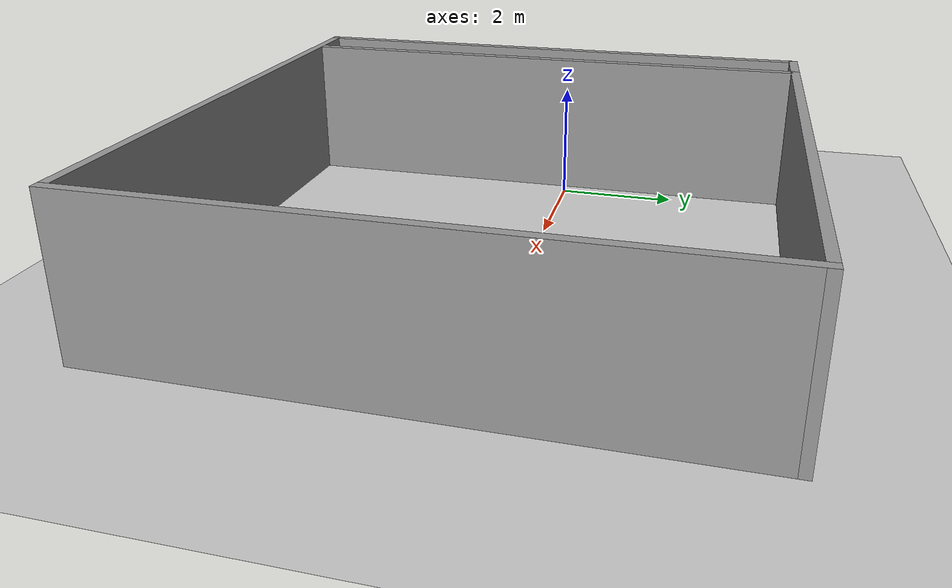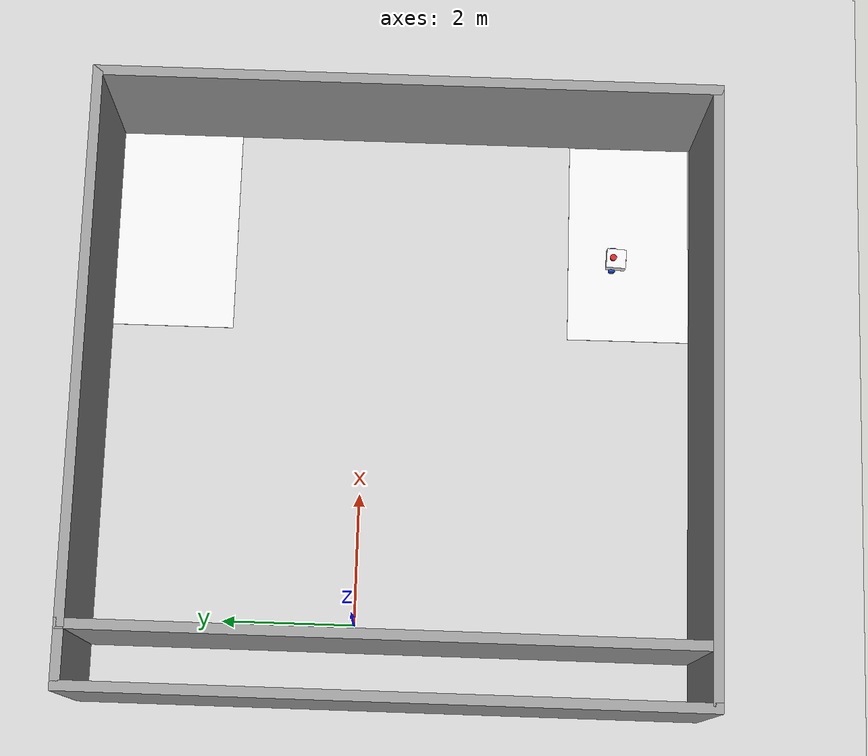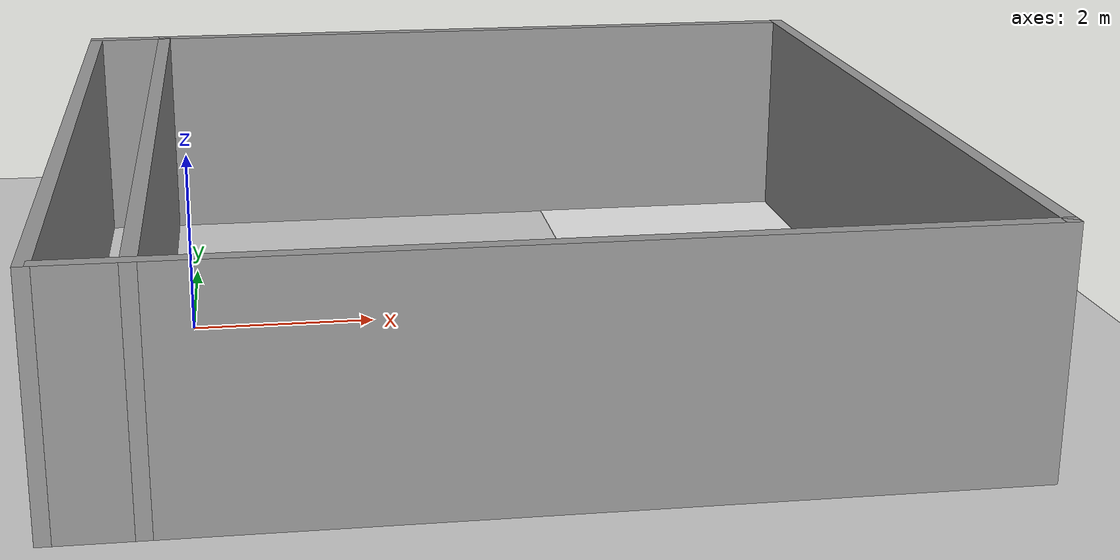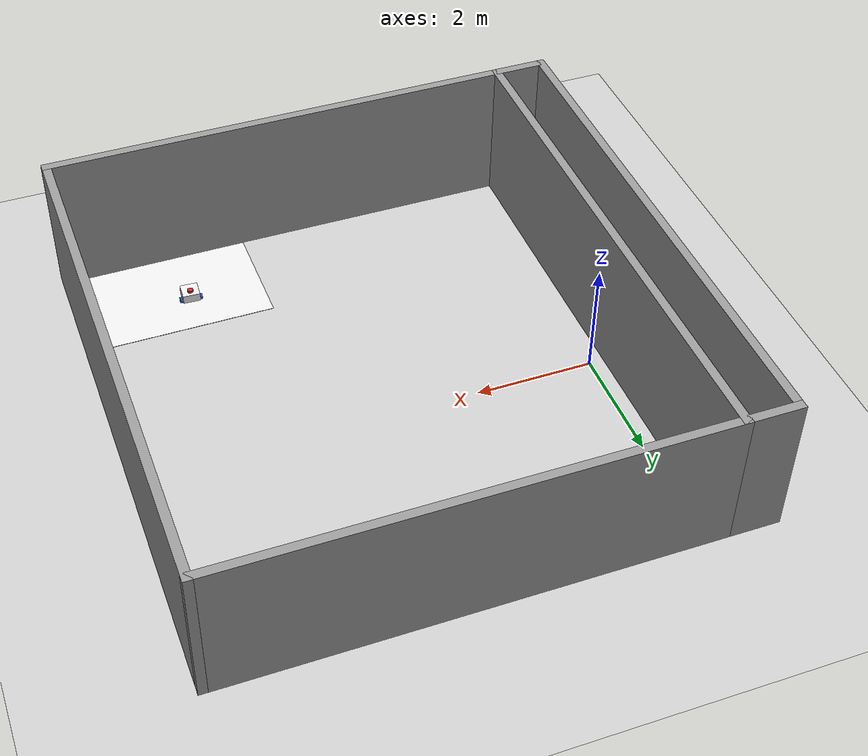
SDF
<sdf version="1.7">
 <world name="default">
  <light name="sun" type="directional">
   <pose>0 0 10 0 -0 0</pose>
   <diffuse>0.8 0.8 0.8 1</diffuse>
   <specular>0.2 0.2 0.2 1</specular>
   <attenuation>
    <range>1000</range>
    <constant>0.9</constant>
    <linear>0.01</linear>
    <quadratic>0.001</quadratic>
   </attenuation>
   <direction>-0.5 0.1 -0.9</direction>
   <spot><inner_angle>0</inner_angle><outer_angle>0</outer_angle><falloff>0</falloff></spot>
  </light>
  <model name="ground_plane">
   <static>1</static>
   <link name="link">
    <collision name="collision">
     <geometry><plane><normal>0 0 1</normal><size>100 100</size></plane></geometry>
     <surface>
      <contact><collide_bitmask>65535</collide_bitmask></contact>
      <friction><ode><mu>100</mu><mu2>50</mu2></ode></friction>
     </surface>
    </collision>
    <visual name="visual">
     <cast_shadows>0</cast_shadows>
     <geometry><plane><normal>0 0 1</normal><size>100 100</size></plane></geometry>
     <material>
      <script><uri>file://media/materials/scripts/gazebo.material</uri><name>Gazebo/Grey</name></script>
     </material>
    </visual>
   </link>
  </model>
  <gravity>0 0 -9.8</gravity>
  <magnetic_field>6e-06 2.3e-05 -4.2e-05</magnetic_field>
  <atmosphere type="adiabatic"/>
  <physics type="ode">
   <max_step_size>0.001</max_step_size>
   <real_time_factor>1</real_time_factor>
   <real_time_update_rate>1000</real_time_update_rate>
  </physics>
  <scene><ambient>0.4 0.4 0.4 1</ambient><background>0.7 0.7 0.7 1</background><shadows>1</shadows></scene>
  <audio><device>default</device></audio>
  <spherical_coordinates>
   <surface_model>EARTH_WGS84</surface_model>
   <latitude_deg>0</latitude_deg>
   <longitude_deg>0</longitude_deg>
   <elevation>0</elevation>
   <heading_deg>0</heading_deg>
  </spherical_coordinates>
  <model name="my_bot">
   <link name="base_link">
    <inertial>
     <pose>0.055714 0 0.078571 0 -0 0</pose>
     <mass>0.7</mass>
     <inertia>
      <ixx>0.0064169</ixx>
      <ixy>0</ixy>
      <ixz>0.00118929</ixz>
      <iyy>0.00745405</iyy>
      <iyz>0</iyz>
      <izz>0.00876214</izz>
     </inertia>
    </inertial>
    <collision name="base_link_fixed_joint_lump__chassis_collision">
     <pose>0.05 0 0.075 0 -0 0</pose>
     <geometry><box><size>0.3 0.3 0.15</size></box></geometry>
    </collision>
    <collision name="base_link_fixed_joint_lump__caster_wheel_collision_1">
     <pose>0.14 0 0 0 -0 0</pose>
     <geometry><sphere><radius>0.05</radius></sphere></geometry>
     <surface><friction><ode><mu>0.001</mu><mu2>0.001</mu2></ode></friction></surface>
    </collision>
    <collision name="base_link_fixed_joint_lump__laser_frame_collision_2">
     <pose>0 0 0.175 0 -0 0</pose>
     <geometry><cylinder><length>0.04</length><radius>0.05</radius></cylinder></geometry>
    </collision>
    <visual name="base_link_fixed_joint_lump__chassis_visual">
     <pose>0.05 0 0.075 0 -0 0</pose>
     <geometry><box><size>0.3 0.3 0.15</size></box></geometry>
     <material>
      <script><name>Gazebo/White</name><uri>file://media/materials/scripts/gazebo.material</uri></script>
     </material>
    </visual>
    <visual name="base_link_fixed_joint_lump__camera_link_visual_1">
     <pose>0.205 0 0.08 0 -0 0</pose>
     <geometry><box><size>0.01 0.03 0.03</size></box></geometry>
     <material>
      <script><name>Gazebo/Red</name><uri>file://media/materials/scripts/gazebo.material</uri></script>
     </material>
    </visual>
    <visual name="base_link_fixed_joint_lump__caster_wheel_visual_2">
     <pose>0.14 0 0 0 -0 0</pose>
     <geometry><sphere><radius>0.05</radius></sphere></geometry>
     <material>
      <script><name>Gazebo/Black</name><uri>file://media/materials/scripts/gazebo.material</uri></script>
     </material>
    </visual>
    <visual name="base_link_fixed_joint_lump__laser_frame_visual_3">
     <pose>0 0 0.175 0 -0 0</pose>
     <geometry><cylinder><length>0.04</length><radius>0.05</radius></cylinder></geometry>
     <material>
      <script><name>Gazebo/Red</name><uri>file://media/materials/scripts/gazebo.material</uri></script>
     </material>
    </visual>
    <sensor name="camera" type="camera">
     <visualize>1</visualize>
     <update_rate>10</update_rate>
     <camera>
      <horizontal_fov>1.089</horizontal_fov>
      <image><format>R8G8B8</format><width>640</width><height>480</height></image>
      <clip><near>0.05</near><far>8</far></clip>
     </camera>
     <plugin name="camera_controller" filename="libgazebo_ros_camera.so">
      <frame_name>camera_link_optical</frame_name>
     </plugin>
     <pose>0.205 0 0.08 0 -0 0</pose>
    </sensor>
    <sensor name="laser" type="ray">
     <visualize>0</visualize>
     <update_rate>10</update_rate>
     <ray>
      <scan>
       <horizontal>
        <samples>360</samples>
        <min_angle>-3.14</min_angle>
        <max_angle>3.14</max_angle>
        <resolution>1</resolution>
       </horizontal>
       <vertical><samples>1</samples><min_angle>0</min_angle><max_angle>0</max_angle></vertical>
      </scan>
      <range><min>0.3</min><max>12</max></range>
     </ray>
     <plugin name="laser_controller" filename="libgazebo_ros_ray_sensor.so">
      <ros><argument>~/out:=scan</argument></ros>
      <output_type>sensor_msgs/LaserScan</output_type>
      <frame_name>laser_frame</frame_name>
     </plugin>
     <pose>0 0 0.175 0 -0 0</pose>
    </sensor>
   </link>
   <joint name="left_wheel_joint" type="revolute">
    <pose relative_to="base_link">0 0.175 0 -1.5708 0 0</pose>
    <parent>base_link</parent>
    <child>left_wheel</child>
    <axis>
     <xyz>0 0 1</xyz>
     <limit><lower>-1e+16</lower><upper>1e+16</upper></limit>
     <dynamics><spring_reference>0</spring_reference><spring_stiffness>0</spring_stiffness></dynamics>
    </axis>
   </joint>
   <link name="left_wheel">
    <pose relative_to="left_wheel_joint">0 0 0 0 -0 0</pose>
    <inertial>
     <mass>0.1</mass>
     <inertia>
      <ixx>7.58333e-05</ixx>
      <ixy>0</ixy>
      <ixz>0</ixz>
      <iyy>7.58333e-05</iyy>
      <iyz>0</iyz>
      <izz>0.000125</izz>
     </inertia>
    </inertial>
    <collision name="left_wheel_collision">
     <geometry><cylinder><length>0.04</length><radius>0.05</radius></cylinder></geometry>
    </collision>
    <visual name="left_wheel_visual">
     <geometry><cylinder><length>0.04</length><radius>0.05</radius></cylinder></geometry>
     <material>
      <script><name>Gazebo/Blue</name><uri>file://media/materials/scripts/gazebo.material</uri></script>
     </material>
    </visual>
   </link>
   <joint name="right_wheel_joint" type="revolute">
    <pose relative_to="base_link">0 -0.175 0 1.5708 -0 0</pose>
    <parent>base_link</parent>
    <child>right_wheel</child>
    <axis>
     <xyz>0 0 -1</xyz>
     <limit><lower>-1e+16</lower><upper>1e+16</upper></limit>
     <dynamics><spring_reference>0</spring_reference><spring_stiffness>0</spring_stiffness></dynamics>
    </axis>
   </joint>
   <link name="right_wheel">
    <pose relative_to="right_wheel_joint">0 0 0 0 -0 0</pose>
    <inertial>
     <mass>0.1</mass>
     <inertia>
      <ixx>7.58333e-05</ixx>
      <ixy>0</ixy>
      <ixz>0</ixz>
      <iyy>7.58333e-05</iyy>
      <iyz>0</iyz>
      <izz>0.000125</izz>
     </inertia>
    </inertial>
    <collision name="right_wheel_collision">
     <geometry><cylinder><length>0.04</length><radius>0.05</radius></cylinder></geometry>
    </collision>
    <visual name="right_wheel_visual">
     <geometry><cylinder><length>0.04</length><radius>0.05</radius></cylinder></geometry>
     <material>
      <script><name>Gazebo/Blue</name><uri>file://media/materials/scripts/gazebo.material</uri></script>
     </material>
    </visual>
   </link>
   <static>0</static>
   <plugin name="diff_drive" filename="libgazebo_ros_diff_drive.so">
    <left_joint>left_wheel_joint</left_joint>
    <right_joint>right_wheel_joint</right_joint>
    <wheel_separation>0.35</wheel_separation>
    <wheel_diameter>0.1</wheel_diameter>
    <max_wheel_torque>200</max_wheel_torque>
    <max_wheel_acceleration>10.0</max_wheel_acceleration>
    <odometry_frame>odom</odometry_frame>
    <robot_base_frame>base_link</robot_base_frame>
    <publish_odom>1</publish_odom>
    <publish_odom_tf>1</publish_odom_tf>
    <publish_wheel_tf>1</publish_wheel_tf>
   </plugin>
   <pose>5.83232 -3.80543 0.056942 -1e-06 6e-06 -1.62681</pose>
  </model>
  <model name="Lunabotics_wall">
   <pose>5.73379 -0.007944 0 0 -0 0</pose>
   <link name="Wall_12">
    <collision name="Wall_12_Collision">
     <geometry><box><size>9.25 0.15 2.5</size></box></geometry>
     <pose>0 0 1.25 0 -0 0</pose>
    </collision>
    <visual name="Wall_12_Visual">
     <pose>0 0 1.25 0 -0 0</pose>
     <geometry><box><size>9.25 0.15 2.5</size></box></geometry>
     <material>
      <script><uri>file://media/materials/scripts/gazebo.material</uri><name>Gazebo/Grey</name></script>
      <ambient>1 1 1 1</ambient>
     </material>
     <meta><layer>0</layer></meta>
    </visual>
    <pose>2.03067 -0.523451 0 0 -0 1.5708</pose>
   </link>
   <link name="Wall_13">
    <collision name="Wall_13_Collision">
     <geometry><box><size>8.25 0.15 2.5</size></box></geometry>
     <pose>0 0 1.25 0 -0 0</pose>
    </collision>
    <visual name="Wall_13_Visual">
     <pose>0 0 1.25 0 -0 0</pose>
     <geometry><box><size>8.25 0.15 2.5</size></box></geometry>
     <material>
      <script><uri>file://media/materials/scripts/gazebo.material</uri><name>Gazebo/Grey</name></script>
      <ambient>1 1 1 1</ambient>
     </material>
     <meta><layer>0</layer></meta>
    </visual>
    <pose>-2.01933 4.02655 0 0 -0 3.14159</pose>
   </link>
   <link name="Wall_2">
    <collision name="Wall_2_Collision">
     <geometry><box><size>9.25 0.15 2.5</size></box></geometry>
     <pose>0 0 1.25 0 -0 0</pose>
    </collision>
    <visual name="Wall_2_Visual">
     <pose>0 0 1.25 0 -0 0</pose>
     <geometry><box><size>9.25 0.15 2.5</size></box></geometry>
     <material>
      <script><uri>file://media/materials/scripts/gazebo.material</uri><name>Gazebo/Grey</name></script>
      <ambient>1 1 1 1</ambient>
     </material>
     <meta><layer>0</layer></meta>
    </visual>
    <pose>-6.91933 -0.523451 0 0 -0 1.5708</pose>
   </link>
   <link name="Wall_3">
    <collision name="Wall_3_Collision">
     <geometry><box><size>1 0.15 2.5</size></box></geometry>
     <pose>0 0 1.25 0 -0 0</pose>
    </collision>
    <visual name="Wall_3_Visual">
     <pose>0 0 1.25 0 -0 0</pose>
     <geometry><box><size>1 0.15 2.5</size></box></geometry>
     <material>
      <script><uri>file://media/materials/scripts/gazebo.material</uri><name>Gazebo/Grey</name></script>
      <ambient>1 1 1 1</ambient>
     </material>
     <meta><layer>0</layer></meta>
    </visual>
    <pose>-6.49433 4.02655 0 0 -0 0</pose>
   </link>
   <link name="Wall_6">
    <collision name="Wall_6_Collision">
     <geometry><box><size>9 0.15 2.5</size></box></geometry>
     <pose>0 0 1.25 0 -0 0</pose>
    </collision>
    <visual name="Wall_6_Visual">
     <pose>0 0 1.25 0 -0 0</pose>
     <geometry><box><size>9 0.15 2.5</size></box></geometry>
     <material>
      <script><uri>file://media/materials/scripts/gazebo.material</uri><name>Gazebo/Grey</name></script>
      <ambient>1 1 1 1</ambient>
     </material>
     <meta><layer>0</layer></meta>
    </visual>
    <pose>-2.39433 -5.07345 0 0 -0 3.14159</pose>
   </link>
   <link name="Wall_9">
    <collision name="Wall_9_Collision">
     <geometry><box><size>9.25 0.15 2.5</size></box></geometry>
     <pose>0 0 1.25 0 -0 0</pose>
    </collision>
    <visual name="Wall_9_Visual">
     <pose>0 0 1.25 0 -0 0</pose>
     <geometry><box><size>9.25 0.15 2.5</size></box></geometry>
     <material>
      <script><uri>file://media/materials/scripts/gazebo.material</uri><name>Gazebo/Grey</name></script>
      <ambient>1 1 1 1</ambient>
     </material>
     <meta><layer>0</layer></meta>
    </visual>
    <pose>-6.06933 -0.523451 0 0 -0 -1.5708</pose>
   </link>
   <static>1</static>
  </model>
  <model name="Unloading_area">
   <link name="link_1">
    <inertial>
     <mass>0.0406732</mass>
     <inertia>
      <ixx>0.0118703</ixx>
      <ixy>0</ixy>
      <ixz>0</ixz>
      <iyy>0.0331911</iyy>
      <iyz>0</iyz>
      <izz>0.045061</izz>
     </inertia>
    </inertial>
    <pose>-1.32818 -3.89039 0.003213 0 -0 0</pose>
    <visual name="visual">
     <geometry><box><size>3.12929 1.87139 0.006941</size></box></geometry>
     <material>
      <lighting>1</lighting>
      <script><uri>file://media/materials/scripts/gazebo.material</uri><name>Gazebo/White</name></script>
      <shader type="pixel"><normal_map>__default__</normal_map></shader>
      <ambient>1 1 1 1</ambient>
      <diffuse>1 1 1 1</diffuse>
      <specular>0 0 0 1</specular>
      <emissive>0 0 0 1</emissive>
     </material>
    </visual>
    <collision name="collision">
     <geometry><box><size>3.12929 1.87139 0.006941</size></box></geometry>
     <surface>
      <friction>
       <ode><mu>1</mu><mu2>1</mu2><fdir1>0 0 0</fdir1><slip1>0</slip1><slip2>0</slip2></ode>
       <torsional>
        <coefficient>1</coefficient>
        <patch_radius>0</patch_radius>
        <surface_radius>0</surface_radius>
        <use_patch_radius>1</use_patch_radius>
        <ode><slip>0</slip></ode>
       </torsional>
      </friction>
      <bounce><restitution_coefficient>0</restitution_coefficient><threshold>1e+06</threshold></bounce>
      <contact>
       <collide_without_contact>0</collide_without_contact>
       <collide_without_contact_bitmask>1</collide_without_contact_bitmask>
       <collide_bitmask>1</collide_bitmask>
       <ode>
        <soft_cfm>0</soft_cfm>
        <soft_erp>0.2</soft_erp>
        <kp>1e+13</kp>
        <kd>1</kd>
        <max_vel>0.01</max_vel>
        <min_depth>0</min_depth>
       </ode>
       <bullet>
        <split_impulse>1</split_impulse>
        <split_impulse_penetration_threshold>-0.01</split_impulse_penetration_threshold>
        <soft_cfm>0</soft_cfm>
        <soft_erp>0.2</soft_erp>
        <kp>1e+13</kp>
        <kd>1</kd>
       </bullet>
      </contact>
     </surface>
    </collision>
   </link>
   <static>0</static>
   <pose>7.43173 -0.159717 0.000253 -1e-06 -0 0.003641</pose>
  </model>
  <model name="Unloading_area_clone">
   <link name="link_1">
    <inertial>
     <mass>0.0406732</mass>
     <inertia>
      <ixx>0.0118703</ixx>
      <ixy>0</ixy>
      <ixz>0</ixz>
      <iyy>0.0331911</iyy>
      <iyz>0</iyz>
      <izz>0.045061</izz>
     </inertia>
    </inertial>
    <pose>-1.32818 -3.89039 0.003213 0 -0 0</pose>
    <visual name="visual">
     <geometry><box><size>3.12929 1.87139 0.006941</size></box></geometry>
     <material>
      <lighting>1</lighting>
      <script><uri>file://media/materials/scripts/gazebo.material</uri><name>Gazebo/White</name></script>
      <shader type="pixel"><normal_map>__default__</normal_map></shader>
      <ambient>1 1 1 1</ambient>
      <diffuse>1 1 1 1</diffuse>
      <specular>0 0 0 1</specular>
      <emissive>0 0 0 1</emissive>
     </material>
    </visual>
    <collision name="collision">
     <geometry><box><size>3.12929 1.87139 0.006941</size></box></geometry>
     <surface>
      <friction>
       <ode><mu>1</mu><mu2>1</mu2><fdir1>0 0 0</fdir1><slip1>0</slip1><slip2>0</slip2></ode>
       <torsional>
        <coefficient>1</coefficient>
        <patch_radius>0</patch_radius>
        <surface_radius>0</surface_radius>
        <use_patch_radius>1</use_patch_radius>
        <ode><slip>0</slip></ode>
       </torsional>
      </friction>
      <bounce><restitution_coefficient>0</restitution_coefficient><threshold>1e+06</threshold></bounce>
      <contact>
       <collide_without_contact>0</collide_without_contact>
       <collide_without_contact_bitmask>1</collide_without_contact_bitmask>
       <collide_bitmask>1</collide_bitmask>
       <ode>
        <soft_cfm>0</soft_cfm>
        <soft_erp>0.2</soft_erp>
        <kp>1e+13</kp>
        <kd>1</kd>
        <max_vel>0.01</max_vel>
        <min_depth>0</min_depth>
       </ode>
       <bullet>
        <split_impulse>1</split_impulse>
        <split_impulse_penetration_threshold>-0.01</split_impulse_penetration_threshold>
        <soft_cfm>0</soft_cfm>
        <soft_erp>0.2</soft_erp>
        <kp>1e+13</kp>
        <kd>1</kd>
       </bullet>
      </contact>
     </surface>
    </collision>
   </link>
   <static>0</static>
   <pose>7.4525 6.89819 0.000257 0 -0 9.4e-05</pose>
  </model>
 </world>
</sdf>
